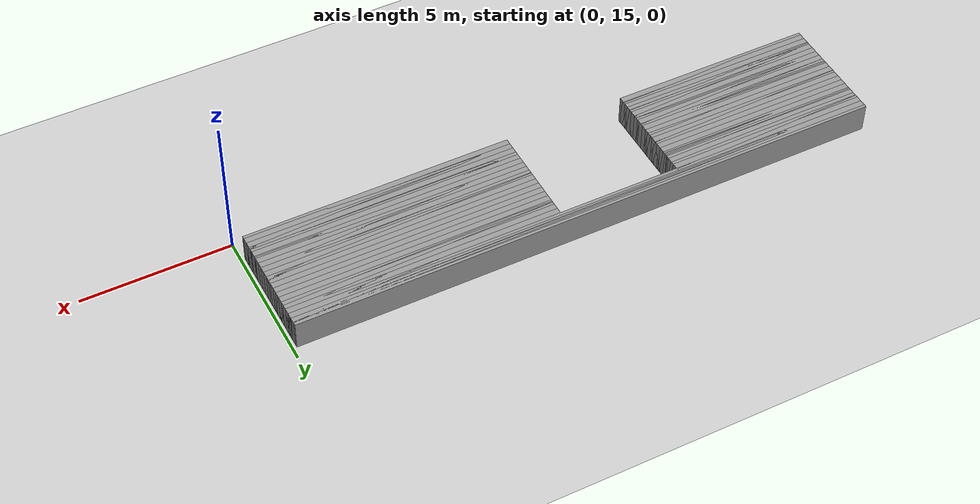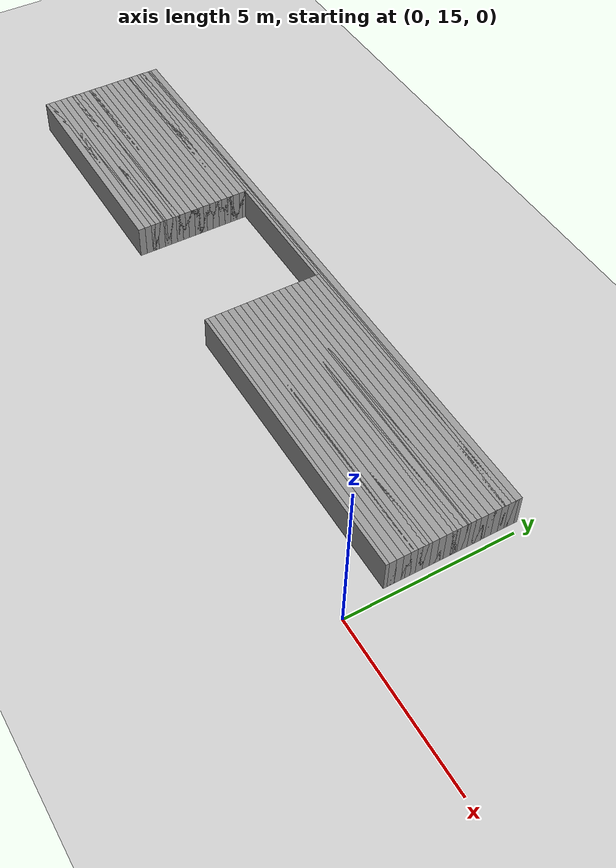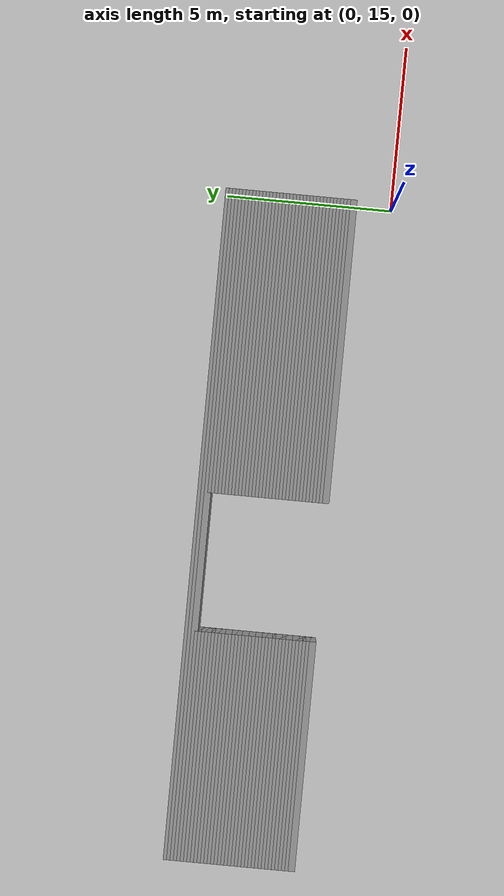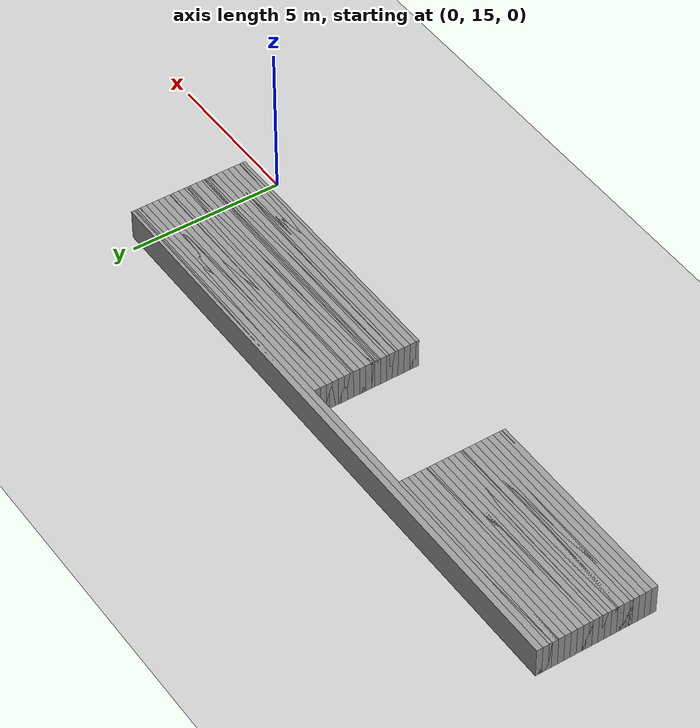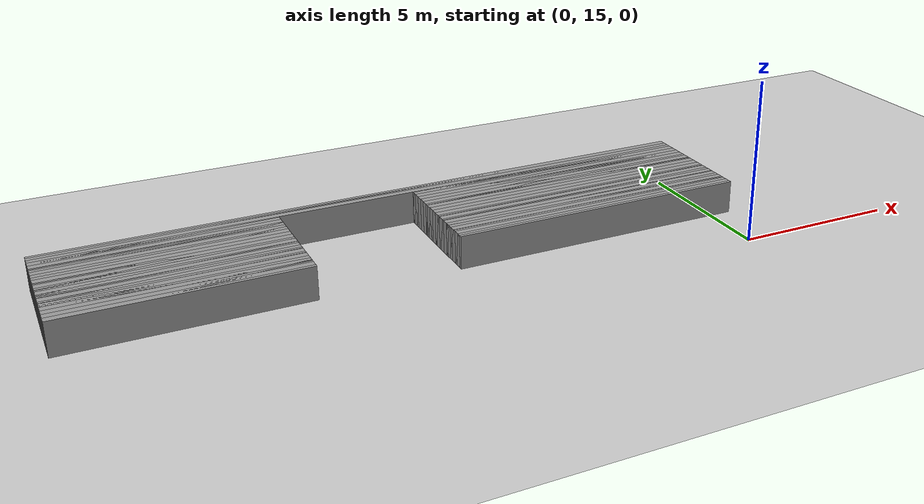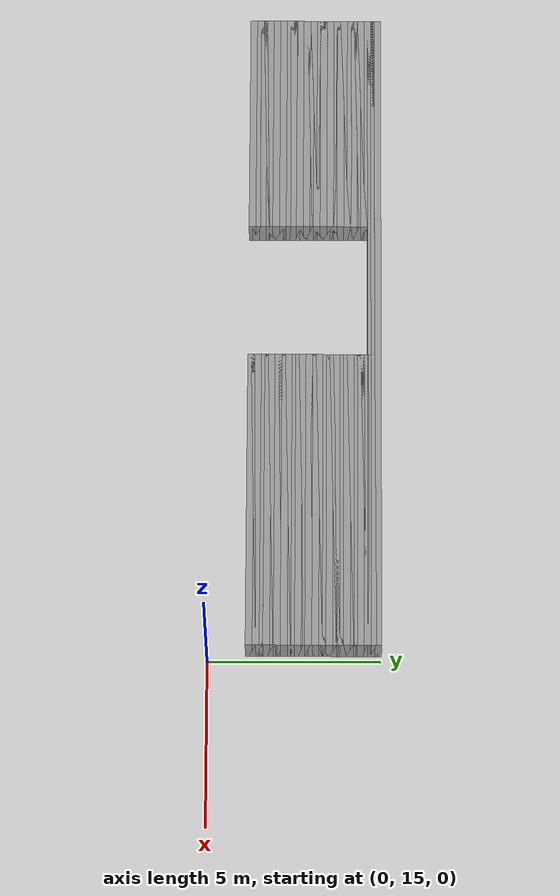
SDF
<sdf version="1.6">
 <world name="GridMap">
  <include><uri>model://sun</uri></include>
  <include><uri>model://ground_plane</uri></include>
  <model name="GridMap">
   <link name="Wall_(45.0,162.0)">
    <collision name="Wall_(45.0,162.0)_Collision">
     <geometry><box><size>9.0 0.2 1.0</size></box></geometry>
     <pose>-4.5 16.2 0.5 0 -0 0</pose>
    </collision>
    <visual name="Wall_(45.0,162.0)_Visual">
     <geometry><box><size>9.0 0.2 1.0</size></box></geometry>
     <pose>-4.5 16.2 0.5 0 -0 0</pose>
     <material>
      <script><uri>file://media/materials/scripts/gazebo.material</uri><name>Gazebo/Grey</name></script>
      <ambient>1 1 1 1</ambient>
     </material>
     <meta><layer>0</layer></meta>
    </visual>
    <pose>0 0 0.5 0 -0 0</pose>
   </link>
   <link name="Wall_(165.0,162.0)">
    <collision name="Wall_(165.0,162.0)_Collision">
     <geometry><box><size>6.800000000000001 0.2 1.0</size></box></geometry>
     <pose>-16.5 16.2 0.5 0 -0 0</pose>
    </collision>
    <visual name="Wall_(165.0,162.0)_Visual">
     <geometry><box><size>6.800000000000001 0.2 1.0</size></box></geometry>
     <pose>-16.5 16.2 0.5 0 -0 0</pose>
     <material>
      <script><uri>file://media/materials/scripts/gazebo.material</uri><name>Gazebo/Grey</name></script>
      <ambient>1 1 1 1</ambient>
     </material>
     <meta><layer>0</layer></meta>
    </visual>
    <pose>0 0 0.5 0 -0 0</pose>
   </link>
   <link name="Wall_(45.0,163.0)">
    <collision name="Wall_(45.0,163.0)_Collision">
     <geometry><box><size>9.0 0.2 1.0</size></box></geometry>
     <pose>-4.5 16.3 0.5 0 -0 0</pose>
    </collision>
    <visual name="Wall_(45.0,163.0)_Visual">
     <geometry><box><size>9.0 0.2 1.0</size></box></geometry>
     <pose>-4.5 16.3 0.5 0 -0 0</pose>
     <material>
      <script><uri>file://media/materials/scripts/gazebo.material</uri><name>Gazebo/Grey</name></script>
      <ambient>1 1 1 1</ambient>
     </material>
     <meta><layer>0</layer></meta>
    </visual>
    <pose>0 0 0.5 0 -0 0</pose>
   </link>
   <link name="Wall_(165.0,163.0)">
    <collision name="Wall_(165.0,163.0)_Collision">
     <geometry><box><size>6.800000000000001 0.2 1.0</size></box></geometry>
     <pose>-16.5 16.3 0.5 0 -0 0</pose>
    </collision>
    <visual name="Wall_(165.0,163.0)_Visual">
     <geometry><box><size>6.800000000000001 0.2 1.0</size></box></geometry>
     <pose>-16.5 16.3 0.5 0 -0 0</pose>
     <material>
      <script><uri>file://media/materials/scripts/gazebo.material</uri><name>Gazebo/Grey</name></script>
      <ambient>1 1 1 1</ambient>
     </material>
     <meta><layer>0</layer></meta>
    </visual>
    <pose>0 0 0.5 0 -0 0</pose>
   </link>
   <link name="Wall_(45.0,164.0)">
    <collision name="Wall_(45.0,164.0)_Collision">
     <geometry><box><size>9.0 0.2 1.0</size></box></geometry>
     <pose>-4.5 16.400000000000002 0.5 0 -0 0</pose>
    </collision>
    <visual name="Wall_(45.0,164.0)_Visual">
     <geometry><box><size>9.0 0.2 1.0</size></box></geometry>
     <pose>-4.5 16.400000000000002 0.5 0 -0 0</pose>
     <material>
      <script><uri>file://media/materials/scripts/gazebo.material</uri><name>Gazebo/Grey</name></script>
      <ambient>1 1 1 1</ambient>
     </material>
     <meta><layer>0</layer></meta>
    </visual>
    <pose>0 0 0.5 0 -0 0</pose>
   </link>
   <link name="Wall_(165.0,164.0)">
    <collision name="Wall_(165.0,164.0)_Collision">
     <geometry><box><size>6.800000000000001 0.2 1.0</size></box></geometry>
     <pose>-16.5 16.400000000000002 0.5 0 -0 0</pose>
    </collision>
    <visual name="Wall_(165.0,164.0)_Visual">
     <geometry><box><size>6.800000000000001 0.2 1.0</size></box></geometry>
     <pose>-16.5 16.400000000000002 0.5 0 -0 0</pose>
     <material>
      <script><uri>file://media/materials/scripts/gazebo.material</uri><name>Gazebo/Grey</name></script>
      <ambient>1 1 1 1</ambient>
     </material>
     <meta><layer>0</layer></meta>
    </visual>
    <pose>0 0 0.5 0 -0 0</pose>
   </link>
   <link name="Wall_(45.0,165.0)">
    <collision name="Wall_(45.0,165.0)_Collision">
     <geometry><box><size>9.0 0.2 1.0</size></box></geometry>
     <pose>-4.5 16.5 0.5 0 -0 0</pose>
    </collision>
    <visual name="Wall_(45.0,165.0)_Visual">
     <geometry><box><size>9.0 0.2 1.0</size></box></geometry>
     <pose>-4.5 16.5 0.5 0 -0 0</pose>
     <material>
      <script><uri>file://media/materials/scripts/gazebo.material</uri><name>Gazebo/Grey</name></script>
      <ambient>1 1 1 1</ambient>
     </material>
     <meta><layer>0</layer></meta>
    </visual>
    <pose>0 0 0.5 0 -0 0</pose>
   </link>
   <link name="Wall_(165.0,165.0)">
    <collision name="Wall_(165.0,165.0)_Collision">
     <geometry><box><size>6.800000000000001 0.2 1.0</size></box></geometry>
     <pose>-16.5 16.5 0.5 0 -0 0</pose>
    </collision>
    <visual name="Wall_(165.0,165.0)_Visual">
     <geometry><box><size>6.800000000000001 0.2 1.0</size></box></geometry>
     <pose>-16.5 16.5 0.5 0 -0 0</pose>
     <material>
      <script><uri>file://media/materials/scripts/gazebo.material</uri><name>Gazebo/Grey</name></script>
      <ambient>1 1 1 1</ambient>
     </material>
     <meta><layer>0</layer></meta>
    </visual>
    <pose>0 0 0.5 0 -0 0</pose>
   </link>
   <link name="Wall_(45.0,166.0)">
    <collision name="Wall_(45.0,166.0)_Collision">
     <geometry><box><size>9.0 0.2 1.0</size></box></geometry>
     <pose>-4.5 16.6 0.5 0 -0 0</pose>
    </collision>
    <visual name="Wall_(45.0,166.0)_Visual">
     <geometry><box><size>9.0 0.2 1.0</size></box></geometry>
     <pose>-4.5 16.6 0.5 0 -0 0</pose>
     <material>
      <script><uri>file://media/materials/scripts/gazebo.material</uri><name>Gazebo/Grey</name></script>
      <ambient>1 1 1 1</ambient>
     </material>
     <meta><layer>0</layer></meta>
    </visual>
    <pose>0 0 0.5 0 -0 0</pose>
   </link>
   <link name="Wall_(165.0,166.0)">
    <collision name="Wall_(165.0,166.0)_Collision">
     <geometry><box><size>6.800000000000001 0.2 1.0</size></box></geometry>
     <pose>-16.5 16.6 0.5 0 -0 0</pose>
    </collision>
    <visual name="Wall_(165.0,166.0)_Visual">
     <geometry><box><size>6.800000000000001 0.2 1.0</size></box></geometry>
     <pose>-16.5 16.6 0.5 0 -0 0</pose>
     <material>
      <script><uri>file://media/materials/scripts/gazebo.material</uri><name>Gazebo/Grey</name></script>
      <ambient>1 1 1 1</ambient>
     </material>
     <meta><layer>0</layer></meta>
    </visual>
    <pose>0 0 0.5 0 -0 0</pose>
   </link>
   <link name="Wall_(45.0,167.0)">
    <collision name="Wall_(45.0,167.0)_Collision">
     <geometry><box><size>9.0 0.2 1.0</size></box></geometry>
     <pose>-4.5 16.7 0.5 0 -0 0</pose>
    </collision>
    <visual name="Wall_(45.0,167.0)_Visual">
     <geometry><box><size>9.0 0.2 1.0</size></box></geometry>
     <pose>-4.5 16.7 0.5 0 -0 0</pose>
     <material>
      <script><uri>file://media/materials/scripts/gazebo.material</uri><name>Gazebo/Grey</name></script>
      <ambient>1 1 1 1</ambient>
     </material>
     <meta><layer>0</layer></meta>
    </visual>
    <pose>0 0 0.5 0 -0 0</pose>
   </link>
   <link name="Wall_(165.0,167.0)">
    <collision name="Wall_(165.0,167.0)_Collision">
     <geometry><box><size>6.800000000000001 0.2 1.0</size></box></geometry>
     <pose>-16.5 16.7 0.5 0 -0 0</pose>
    </collision>
    <visual name="Wall_(165.0,167.0)_Visual">
     <geometry><box><size>6.800000000000001 0.2 1.0</size></box></geometry>
     <pose>-16.5 16.7 0.5 0 -0 0</pose>
     <material>
      <script><uri>file://media/materials/scripts/gazebo.material</uri><name>Gazebo/Grey</name></script>
      <ambient>1 1 1 1</ambient>
     </material>
     <meta><layer>0</layer></meta>
    </visual>
    <pose>0 0 0.5 0 -0 0</pose>
   </link>
   <link name="Wall_(45.0,168.0)">
    <collision name="Wall_(45.0,168.0)_Collision">
     <geometry><box><size>9.0 0.2 1.0</size></box></geometry>
     <pose>-4.5 16.8 0.5 0 -0 0</pose>
    </collision>
    <visual name="Wall_(45.0,168.0)_Visual">
     <geometry><box><size>9.0 0.2 1.0</size></box></geometry>
     <pose>-4.5 16.8 0.5 0 -0 0</pose>
     <material>
      <script><uri>file://media/materials/scripts/gazebo.material</uri><name>Gazebo/Grey</name></script>
      <ambient>1 1 1 1</ambient>
     </material>
     <meta><layer>0</layer></meta>
    </visual>
    <pose>0 0 0.5 0 -0 0</pose>
   </link>
   <link name="Wall_(165.0,168.0)">
    <collision name="Wall_(165.0,168.0)_Collision">
     <geometry><box><size>6.800000000000001 0.2 1.0</size></box></geometry>
     <pose>-16.5 16.8 0.5 0 -0 0</pose>
    </collision>
    <visual name="Wall_(165.0,168.0)_Visual">
     <geometry><box><size>6.800000000000001 0.2 1.0</size></box></geometry>
     <pose>-16.5 16.8 0.5 0 -0 0</pose>
     <material>
      <script><uri>file://media/materials/scripts/gazebo.material</uri><name>Gazebo/Grey</name></script>
      <ambient>1 1 1 1</ambient>
     </material>
     <meta><layer>0</layer></meta>
    </visual>
    <pose>0 0 0.5 0 -0 0</pose>
   </link>
   <link name="Wall_(45.0,169.0)">
    <collision name="Wall_(45.0,169.0)_Collision">
     <geometry><box><size>9.0 0.2 1.0</size></box></geometry>
     <pose>-4.5 16.900000000000002 0.5 0 -0 0</pose>
    </collision>
    <visual name="Wall_(45.0,169.0)_Visual">
     <geometry><box><size>9.0 0.2 1.0</size></box></geometry>
     <pose>-4.5 16.900000000000002 0.5 0 -0 0</pose>
     <material>
      <script><uri>file://media/materials/scripts/gazebo.material</uri><name>Gazebo/Grey</name></script>
      <ambient>1 1 1 1</ambient>
     </material>
     <meta><layer>0</layer></meta>
    </visual>
    <pose>0 0 0.5 0 -0 0</pose>
   </link>
   <link name="Wall_(165.0,169.0)">
    <collision name="Wall_(165.0,169.0)_Collision">
     <geometry><box><size>6.800000000000001 0.2 1.0</size></box></geometry>
     <pose>-16.5 16.900000000000002 0.5 0 -0 0</pose>
    </collision>
    <visual name="Wall_(165.0,169.0)_Visual">
     <geometry><box><size>6.800000000000001 0.2 1.0</size></box></geometry>
     <pose>-16.5 16.900000000000002 0.5 0 -0 0</pose>
     <material>
      <script><uri>file://media/materials/scripts/gazebo.material</uri><name>Gazebo/Grey</name></script>
      <ambient>1 1 1 1</ambient>
     </material>
     <meta><layer>0</layer></meta>
    </visual>
    <pose>0 0 0.5 0 -0 0</pose>
   </link>
   <link name="Wall_(45.0,170.0)">
    <collision name="Wall_(45.0,170.0)_Collision">
     <geometry><box><size>9.0 0.2 1.0</size></box></geometry>
     <pose>-4.5 17.0 0.5 0 -0 0</pose>
    </collision>
    <visual name="Wall_(45.0,170.0)_Visual">
     <geometry><box><size>9.0 0.2 1.0</size></box></geometry>
     <pose>-4.5 17.0 0.5 0 -0 0</pose>
     <material>
      <script><uri>file://media/materials/scripts/gazebo.material</uri><name>Gazebo/Grey</name></script>
      <ambient>1 1 1 1</ambient>
     </material>
     <meta><layer>0</layer></meta>
    </visual>
    <pose>0 0 0.5 0 -0 0</pose>
   </link>
   <link name="Wall_(165.0,170.0)">
    <collision name="Wall_(165.0,170.0)_Collision">
     <geometry><box><size>6.800000000000001 0.2 1.0</size></box></geometry>
     <pose>-16.5 17.0 0.5 0 -0 0</pose>
    </collision>
    <visual name="Wall_(165.0,170.0)_Visual">
     <geometry><box><size>6.800000000000001 0.2 1.0</size></box></geometry>
     <pose>-16.5 17.0 0.5 0 -0 0</pose>
     <material>
      <script><uri>file://media/materials/scripts/gazebo.material</uri><name>Gazebo/Grey</name></script>
      <ambient>1 1 1 1</ambient>
     </material>
     <meta><layer>0</layer></meta>
    </visual>
    <pose>0 0 0.5 0 -0 0</pose>
   </link>
   <link name="Wall_(45.0,171.0)">
    <collision name="Wall_(45.0,171.0)_Collision">
     <geometry><box><size>9.0 0.2 1.0</size></box></geometry>
     <pose>-4.5 17.1 0.5 0 -0 0</pose>
    </collision>
    <visual name="Wall_(45.0,171.0)_Visual">
     <geometry><box><size>9.0 0.2 1.0</size></box></geometry>
     <pose>-4.5 17.1 0.5 0 -0 0</pose>
     <material>
      <script><uri>file://media/materials/scripts/gazebo.material</uri><name>Gazebo/Grey</name></script>
      <ambient>1 1 1 1</ambient>
     </material>
     <meta><layer>0</layer></meta>
    </visual>
    <pose>0 0 0.5 0 -0 0</pose>
   </link>
   <link name="Wall_(165.0,171.0)">
    <collision name="Wall_(165.0,171.0)_Collision">
     <geometry><box><size>6.800000000000001 0.2 1.0</size></box></geometry>
     <pose>-16.5 17.1 0.5 0 -0 0</pose>
    </collision>
    <visual name="Wall_(165.0,171.0)_Visual">
     <geometry><box><size>6.800000000000001 0.2 1.0</size></box></geometry>
     <pose>-16.5 17.1 0.5 0 -0 0</pose>
     <material>
      <script><uri>file://media/materials/scripts/gazebo.material</uri><name>Gazebo/Grey</name></script>
      <ambient>1 1 1 1</ambient>
     </material>
     <meta><layer>0</layer></meta>
    </visual>
    <pose>0 0 0.5 0 -0 0</pose>
   </link>
   <link name="Wall_(45.0,172.0)">
    <collision name="Wall_(45.0,172.0)_Collision">
     <geometry><box><size>9.0 0.2 1.0</size></box></geometry>
     <pose>-4.5 17.2 0.5 0 -0 0</pose>
    </collision>
    <visual name="Wall_(45.0,172.0)_Visual">
     <geometry><box><size>9.0 0.2 1.0</size></box></geometry>
     <pose>-4.5 17.2 0.5 0 -0 0</pose>
     <material>
      <script><uri>file://media/materials/scripts/gazebo.material</uri><name>Gazebo/Grey</name></script>
      <ambient>1 1 1 1</ambient>
     </material>
     <meta><layer>0</layer></meta>
    </visual>
    <pose>0 0 0.5 0 -0 0</pose>
   </link>
   <link name="Wall_(165.0,172.0)">
    <collision name="Wall_(165.0,172.0)_Collision">
     <geometry><box><size>6.800000000000001 0.2 1.0</size></box></geometry>
     <pose>-16.5 17.2 0.5 0 -0 0</pose>
    </collision>
    <visual name="Wall_(165.0,172.0)_Visual">
     <geometry><box><size>6.800000000000001 0.2 1.0</size></box></geometry>
     <pose>-16.5 17.2 0.5 0 -0 0</pose>
     <material>
      <script><uri>file://media/materials/scripts/gazebo.material</uri><name>Gazebo/Grey</name></script>
      <ambient>1 1 1 1</ambient>
     </material>
     <meta><layer>0</layer></meta>
    </visual>
    <pose>0 0 0.5 0 -0 0</pose>
   </link>
   <link name="Wall_(45.0,173.0)">
    <collision name="Wall_(45.0,173.0)_Collision">
     <geometry><box><size>9.0 0.2 1.0</size></box></geometry>
     <pose>-4.5 17.3 0.5 0 -0 0</pose>
    </collision>
    <visual name="Wall_(45.0,173.0)_Visual">
     <geometry><box><size>9.0 0.2 1.0</size></box></geometry>
     <pose>-4.5 17.3 0.5 0 -0 0</pose>
     <material>
      <script><uri>file://media/materials/scripts/gazebo.material</uri><name>Gazebo/Grey</name></script>
      <ambient>1 1 1 1</ambient>
     </material>
     <meta><layer>0</layer></meta>
    </visual>
    <pose>0 0 0.5 0 -0 0</pose>
   </link>
   <link name="Wall_(165.0,173.0)">
    <collision name="Wall_(165.0,173.0)_Collision">
     <geometry><box><size>6.800000000000001 0.2 1.0</size></box></geometry>
     <pose>-16.5 17.3 0.5 0 -0 0</pose>
    </collision>
    <visual name="Wall_(165.0,173.0)_Visual">
     <geometry><box><size>6.800000000000001 0.2 1.0</size></box></geometry>
     <pose>-16.5 17.3 0.5 0 -0 0</pose>
     <material>
      <script><uri>file://media/materials/scripts/gazebo.material</uri><name>Gazebo/Grey</name></script>
      <ambient>1 1 1 1</ambient>
     </material>
     <meta><layer>0</layer></meta>
    </visual>
    <pose>0 0 0.5 0 -0 0</pose>
   </link>
   <link name="Wall_(45.0,174.0)">
    <collision name="Wall_(45.0,174.0)_Collision">
     <geometry><box><size>9.0 0.2 1.0</size></box></geometry>
     <pose>-4.5 17.400000000000002 0.5 0 -0 0</pose>
    </collision>
    <visual name="Wall_(45.0,174.0)_Visual">
     <geometry><box><size>9.0 0.2 1.0</size></box></geometry>
     <pose>-4.5 17.400000000000002 0.5 0 -0 0</pose>
     <material>
      <script><uri>file://media/materials/scripts/gazebo.material</uri><name>Gazebo/Grey</name></script>
      <ambient>1 1 1 1</ambient>
     </material>
     <meta><layer>0</layer></meta>
    </visual>
    <pose>0 0 0.5 0 -0 0</pose>
   </link>
   <link name="Wall_(165.0,174.0)">
    <collision name="Wall_(165.0,174.0)_Collision">
     <geometry><box><size>6.800000000000001 0.2 1.0</size></box></geometry>
     <pose>-16.5 17.400000000000002 0.5 0 -0 0</pose>
    </collision>
    <visual name="Wall_(165.0,174.0)_Visual">
     <geometry><box><size>6.800000000000001 0.2 1.0</size></box></geometry>
     <pose>-16.5 17.400000000000002 0.5 0 -0 0</pose>
     <material>
      <script><uri>file://media/materials/scripts/gazebo.material</uri><name>Gazebo/Grey</name></script>
      <ambient>1 1 1 1</ambient>
     </material>
     <meta><layer>0</layer></meta>
    </visual>
    <pose>0 0 0.5 0 -0 0</pose>
   </link>
   <link name="Wall_(45.0,175.0)">
    <collision name="Wall_(45.0,175.0)_Collision">
     <geometry><box><size>9.0 0.2 1.0</size></box></geometry>
     <pose>-4.5 17.5 0.5 0 -0 0</pose>
    </collision>
    <visual name="Wall_(45.0,175.0)_Visual">
     <geometry><box><size>9.0 0.2 1.0</size></box></geometry>
     <pose>-4.5 17.5 0.5 0 -0 0</pose>
     <material>
      <script><uri>file://media/materials/scripts/gazebo.material</uri><name>Gazebo/Grey</name></script>
      <ambient>1 1 1 1</ambient>
     </material>
     <meta><layer>0</layer></meta>
    </visual>
    <pose>0 0 0.5 0 -0 0</pose>
   </link>
   <link name="Wall_(165.0,175.0)">
    <collision name="Wall_(165.0,175.0)_Collision">
     <geometry><box><size>6.800000000000001 0.2 1.0</size></box></geometry>
     <pose>-16.5 17.5 0.5 0 -0 0</pose>
    </collision>
    <visual name="Wall_(165.0,175.0)_Visual">
     <geometry><box><size>6.800000000000001 0.2 1.0</size></box></geometry>
     <pose>-16.5 17.5 0.5 0 -0 0</pose>
     <material>
      <script><uri>file://media/materials/scripts/gazebo.material</uri><name>Gazebo/Grey</name></script>
      <ambient>1 1 1 1</ambient>
     </material>
     <meta><layer>0</layer></meta>
    </visual>
    <pose>0 0 0.5 0 -0 0</pose>
   </link>
   <link name="Wall_(45.0,176.0)">
    <collision name="Wall_(45.0,176.0)_Collision">
     <geometry><box><size>9.0 0.2 1.0</size></box></geometry>
     <pose>-4.5 17.6 0.5 0 -0 0</pose>
    </collision>
    <visual name="Wall_(45.0,176.0)_Visual">
     <geometry><box><size>9.0 0.2 1.0</size></box></geometry>
     <pose>-4.5 17.6 0.5 0 -0 0</pose>
     <material>
      <script><uri>file://media/materials/scripts/gazebo.material</uri><name>Gazebo/Grey</name></script>
      <ambient>1 1 1 1</ambient>
     </material>
     <meta><layer>0</layer></meta>
    </visual>
    <pose>0 0 0.5 0 -0 0</pose>
   </link>
   <link name="Wall_(165.0,176.0)">
    <collision name="Wall_(165.0,176.0)_Collision">
     <geometry><box><size>6.800000000000001 0.2 1.0</size></box></geometry>
     <pose>-16.5 17.6 0.5 0 -0 0</pose>
    </collision>
    <visual name="Wall_(165.0,176.0)_Visual">
     <geometry><box><size>6.800000000000001 0.2 1.0</size></box></geometry>
     <pose>-16.5 17.6 0.5 0 -0 0</pose>
     <material>
      <script><uri>file://media/materials/scripts/gazebo.material</uri><name>Gazebo/Grey</name></script>
      <ambient>1 1 1 1</ambient>
     </material>
     <meta><layer>0</layer></meta>
    </visual>
    <pose>0 0 0.5 0 -0 0</pose>
   </link>
   <link name="Wall_(45.0,177.0)">
    <collision name="Wall_(45.0,177.0)_Collision">
     <geometry><box><size>9.0 0.2 1.0</size></box></geometry>
     <pose>-4.5 17.7 0.5 0 -0 0</pose>
    </collision>
    <visual name="Wall_(45.0,177.0)_Visual">
     <geometry><box><size>9.0 0.2 1.0</size></box></geometry>
     <pose>-4.5 17.7 0.5 0 -0 0</pose>
     <material>
      <script><uri>file://media/materials/scripts/gazebo.material</uri><name>Gazebo/Grey</name></script>
      <ambient>1 1 1 1</ambient>
     </material>
     <meta><layer>0</layer></meta>
    </visual>
    <pose>0 0 0.5 0 -0 0</pose>
   </link>
   <link name="Wall_(165.0,177.0)">
    <collision name="Wall_(165.0,177.0)_Collision">
     <geometry><box><size>6.800000000000001 0.2 1.0</size></box></geometry>
     <pose>-16.5 17.7 0.5 0 -0 0</pose>
    </collision>
    <visual name="Wall_(165.0,177.0)_Visual">
     <geometry><box><size>6.800000000000001 0.2 1.0</size></box></geometry>
     <pose>-16.5 17.7 0.5 0 -0 0</pose>
     <material>
      <script><uri>file://media/materials/scripts/gazebo.material</uri><name>Gazebo/Grey</name></script>
      <ambient>1 1 1 1</ambient>
     </material>
     <meta><layer>0</layer></meta>
    </visual>
    <pose>0 0 0.5 0 -0 0</pose>
   </link>
   <link name="Wall_(45.0,178.0)">
    <collision name="Wall_(45.0,178.0)_Collision">
     <geometry><box><size>9.0 0.2 1.0</size></box></geometry>
     <pose>-4.5 17.8 0.5 0 -0 0</pose>
    </collision>
    <visual name="Wall_(45.0,178.0)_Visual">
     <geometry><box><size>9.0 0.2 1.0</size></box></geometry>
     <pose>-4.5 17.8 0.5 0 -0 0</pose>
     <material>
      <script><uri>file://media/materials/scripts/gazebo.material</uri><name>Gazebo/Grey</name></script>
      <ambient>1 1 1 1</ambient>
     </material>
     <meta><layer>0</layer></meta>
    </visual>
    <pose>0 0 0.5 0 -0 0</pose>
   </link>
   <link name="Wall_(165.0,178.0)">
    <collision name="Wall_(165.0,178.0)_Collision">
     <geometry><box><size>6.800000000000001 0.2 1.0</size></box></geometry>
     <pose>-16.5 17.8 0.5 0 -0 0</pose>
    </collision>
    <visual name="Wall_(165.0,178.0)_Visual">
     <geometry><box><size>6.800000000000001 0.2 1.0</size></box></geometry>
     <pose>-16.5 17.8 0.5 0 -0 0</pose>
     <material>
      <script><uri>file://media/materials/scripts/gazebo.material</uri><name>Gazebo/Grey</name></script>
      <ambient>1 1 1 1</ambient>
     </material>
     <meta><layer>0</layer></meta>
    </visual>
    <pose>0 0 0.5 0 -0 0</pose>
   </link>
   <link name="Wall_(45.0,179.0)">
    <collision name="Wall_(45.0,179.0)_Collision">
     <geometry><box><size>9.0 0.2 1.0</size></box></geometry>
     <pose>-4.5 17.900000000000002 0.5 0 -0 0</pose>
    </collision>
    <visual name="Wall_(45.0,179.0)_Visual">
     <geometry><box><size>9.0 0.2 1.0</size></box></geometry>
     <pose>-4.5 17.900000000000002 0.5 0 -0 0</pose>
     <material>
      <script><uri>file://media/materials/scripts/gazebo.material</uri><name>Gazebo/Grey</name></script>
      <ambient>1 1 1 1</ambient>
     </material>
     <meta><layer>0</layer></meta>
    </visual>
    <pose>0 0 0.5 0 -0 0</pose>
   </link>
   <link name="Wall_(165.0,179.0)">
    <collision name="Wall_(165.0,179.0)_Collision">
     <geometry><box><size>6.800000000000001 0.2 1.0</size></box></geometry>
     <pose>-16.5 17.900000000000002 0.5 0 -0 0</pose>
    </collision>
    <visual name="Wall_(165.0,179.0)_Visual">
     <geometry><box><size>6.800000000000001 0.2 1.0</size></box></geometry>
     <pose>-16.5 17.900000000000002 0.5 0 -0 0</pose>
     <material>
      <script><uri>file://media/materials/scripts/gazebo.material</uri><name>Gazebo/Grey</name></script>
      <ambient>1 1 1 1</ambient>
     </material>
     <meta><layer>0</layer></meta>
    </visual>
    <pose>0 0 0.5 0 -0 0</pose>
   </link>
   <link name="Wall_(45.0,180.0)">
    <collision name="Wall_(45.0,180.0)_Collision">
     <geometry><box><size>9.0 0.2 1.0</size></box></geometry>
     <pose>-4.5 18.0 0.5 0 -0 0</pose>
    </collision>
    <visual name="Wall_(45.0,180.0)_Visual">
     <geometry><box><size>9.0 0.2 1.0</size></box></geometry>
     <pose>-4.5 18.0 0.5 0 -0 0</pose>
     <material>
      <script><uri>file://media/materials/scripts/gazebo.material</uri><name>Gazebo/Grey</name></script>
      <ambient>1 1 1 1</ambient>
     </material>
     <meta><layer>0</layer></meta>
    </visual>
    <pose>0 0 0.5 0 -0 0</pose>
   </link>
   <link name="Wall_(165.0,180.0)">
    <collision name="Wall_(165.0,180.0)_Collision">
     <geometry><box><size>6.800000000000001 0.2 1.0</size></box></geometry>
     <pose>-16.5 18.0 0.5 0 -0 0</pose>
    </collision>
    <visual name="Wall_(165.0,180.0)_Visual">
     <geometry><box><size>6.800000000000001 0.2 1.0</size></box></geometry>
     <pose>-16.5 18.0 0.5 0 -0 0</pose>
     <material>
      <script><uri>file://media/materials/scripts/gazebo.material</uri><name>Gazebo/Grey</name></script>
      <ambient>1 1 1 1</ambient>
     </material>
     <meta><layer>0</layer></meta>
    </visual>
    <pose>0 0 0.5 0 -0 0</pose>
   </link>
   <link name="Wall_(45.0,181.0)">
    <collision name="Wall_(45.0,181.0)_Collision">
     <geometry><box><size>9.0 0.2 1.0</size></box></geometry>
     <pose>-4.5 18.1 0.5 0 -0 0</pose>
    </collision>
    <visual name="Wall_(45.0,181.0)_Visual">
     <geometry><box><size>9.0 0.2 1.0</size></box></geometry>
     <pose>-4.5 18.1 0.5 0 -0 0</pose>
     <material>
      <script><uri>file://media/materials/scripts/gazebo.material</uri><name>Gazebo/Grey</name></script>
      <ambient>1 1 1 1</ambient>
     </material>
     <meta><layer>0</layer></meta>
    </visual>
    <pose>0 0 0.5 0 -0 0</pose>
   </link>
   <link name="Wall_(165.0,181.0)">
    <collision name="Wall_(165.0,181.0)_Collision">
     <geometry><box><size>6.800000000000001 0.2 1.0</size></box></geometry>
     <pose>-16.5 18.1 0.5 0 -0 0</pose>
    </collision>
    <visual name="Wall_(165.0,181.0)_Visual">
     <geometry><box><size>6.800000000000001 0.2 1.0</size></box></geometry>
     <pose>-16.5 18.1 0.5 0 -0 0</pose>
     <material>
      <script><uri>file://media/materials/scripts/gazebo.material</uri><name>Gazebo/Grey</name></script>
      <ambient>1 1 1 1</ambient>
     </material>
     <meta><layer>0</layer></meta>
    </visual>
    <pose>0 0 0.5 0 -0 0</pose>
   </link>
   <link name="Wall_(45.0,182.0)">
    <collision name="Wall_(45.0,182.0)_Collision">
     <geometry><box><size>9.0 0.2 1.0</size></box></geometry>
     <pose>-4.5 18.2 0.5 0 -0 0</pose>
    </collision>
    <visual name="Wall_(45.0,182.0)_Visual">
     <geometry><box><size>9.0 0.2 1.0</size></box></geometry>
     <pose>-4.5 18.2 0.5 0 -0 0</pose>
     <material>
      <script><uri>file://media/materials/scripts/gazebo.material</uri><name>Gazebo/Grey</name></script>
      <ambient>1 1 1 1</ambient>
     </material>
     <meta><layer>0</layer></meta>
    </visual>
    <pose>0 0 0.5 0 -0 0</pose>
   </link>
   <link name="Wall_(165.0,182.0)">
    <collision name="Wall_(165.0,182.0)_Collision">
     <geometry><box><size>6.800000000000001 0.2 1.0</size></box></geometry>
     <pose>-16.5 18.2 0.5 0 -0 0</pose>
    </collision>
    <visual name="Wall_(165.0,182.0)_Visual">
     <geometry><box><size>6.800000000000001 0.2 1.0</size></box></geometry>
     <pose>-16.5 18.2 0.5 0 -0 0</pose>
     <material>
      <script><uri>file://media/materials/scripts/gazebo.material</uri><name>Gazebo/Grey</name></script>
      <ambient>1 1 1 1</ambient>
     </material>
     <meta><layer>0</layer></meta>
    </visual>
    <pose>0 0 0.5 0 -0 0</pose>
   </link>
   <link name="Wall_(45.0,183.0)">
    <collision name="Wall_(45.0,183.0)_Collision">
     <geometry><box><size>9.0 0.2 1.0</size></box></geometry>
     <pose>-4.5 18.3 0.5 0 -0 0</pose>
    </collision>
    <visual name="Wall_(45.0,183.0)_Visual">
     <geometry><box><size>9.0 0.2 1.0</size></box></geometry>
     <pose>-4.5 18.3 0.5 0 -0 0</pose>
     <material>
      <script><uri>file://media/materials/scripts/gazebo.material</uri><name>Gazebo/Grey</name></script>
      <ambient>1 1 1 1</ambient>
     </material>
     <meta><layer>0</layer></meta>
    </visual>
    <pose>0 0 0.5 0 -0 0</pose>
   </link>
   <link name="Wall_(165.0,183.0)">
    <collision name="Wall_(165.0,183.0)_Collision">
     <geometry><box><size>6.800000000000001 0.2 1.0</size></box></geometry>
     <pose>-16.5 18.3 0.5 0 -0 0</pose>
    </collision>
    <visual name="Wall_(165.0,183.0)_Visual">
     <geometry><box><size>6.800000000000001 0.2 1.0</size></box></geometry>
     <pose>-16.5 18.3 0.5 0 -0 0</pose>
     <material>
      <script><uri>file://media/materials/scripts/gazebo.material</uri><name>Gazebo/Grey</name></script>
      <ambient>1 1 1 1</ambient>
     </material>
     <meta><layer>0</layer></meta>
    </visual>
    <pose>0 0 0.5 0 -0 0</pose>
   </link>
   <link name="Wall_(45.0,184.0)">
    <collision name="Wall_(45.0,184.0)_Collision">
     <geometry><box><size>9.0 0.2 1.0</size></box></geometry>
     <pose>-4.5 18.400000000000002 0.5 0 -0 0</pose>
    </collision>
    <visual name="Wall_(45.0,184.0)_Visual">
     <geometry><box><size>9.0 0.2 1.0</size></box></geometry>
     <pose>-4.5 18.400000000000002 0.5 0 -0 0</pose>
     <material>
      <script><uri>file://media/materials/scripts/gazebo.material</uri><name>Gazebo/Grey</name></script>
      <ambient>1 1 1 1</ambient>
     </material>
     <meta><layer>0</layer></meta>
    </visual>
    <pose>0 0 0.5 0 -0 0</pose>
   </link>
   <link name="Wall_(165.0,184.0)">
    <collision name="Wall_(165.0,184.0)_Collision">
     <geometry><box><size>6.800000000000001 0.2 1.0</size></box></geometry>
     <pose>-16.5 18.400000000000002 0.5 0 -0 0</pose>
    </collision>
    <visual name="Wall_(165.0,184.0)_Visual">
     <geometry><box><size>6.800000000000001 0.2 1.0</size></box></geometry>
     <pose>-16.5 18.400000000000002 0.5 0 -0 0</pose>
     <material>
      <script><uri>file://media/materials/scripts/gazebo.material</uri><name>Gazebo/Grey</name></script>
      <ambient>1 1 1 1</ambient>
     </material>
     <meta><layer>0</layer></meta>
    </visual>
    <pose>0 0 0.5 0 -0 0</pose>
   </link>
   <link name="Wall_(45.0,185.0)">
    <collision name="Wall_(45.0,185.0)_Collision">
     <geometry><box><size>9.0 0.2 1.0</size></box></geometry>
     <pose>-4.5 18.5 0.5 0 -0 0</pose>
    </collision>
    <visual name="Wall_(45.0,185.0)_Visual">
     <geometry><box><size>9.0 0.2 1.0</size></box></geometry>
     <pose>-4.5 18.5 0.5 0 -0 0</pose>
     <material>
      <script><uri>file://media/materials/scripts/gazebo.material</uri><name>Gazebo/Grey</name></script>
      <ambient>1 1 1 1</ambient>
     </material>
     <meta><layer>0</layer></meta>
    </visual>
    <pose>0 0 0.5 0 -0 0</pose>
   </link>
   <link name="Wall_(165.0,185.0)">
    <collision name="Wall_(165.0,185.0)_Collision">
     <geometry><box><size>6.800000000000001 0.2 1.0</size></box></geometry>
     <pose>-16.5 18.5 0.5 0 -0 0</pose>
    </collision>
    <visual name="Wall_(165.0,185.0)_Visual">
     <geometry><box><size>6.800000000000001 0.2 1.0</size></box></geometry>
     <pose>-16.5 18.5 0.5 0 -0 0</pose>
     <material>
      <script><uri>file://media/materials/scripts/gazebo.material</uri><name>Gazebo/Grey</name></script>
      <ambient>1 1 1 1</ambient>
     </material>
     <meta><layer>0</layer></meta>
    </visual>
    <pose>0 0 0.5 0 -0 0</pose>
   </link>
   <link name="Wall_(45.0,186.0)">
    <collision name="Wall_(45.0,186.0)_Collision">
     <geometry><box><size>9.0 0.2 1.0</size></box></geometry>
     <pose>-4.5 18.6 0.5 0 -0 0</pose>
    </collision>
    <visual name="Wall_(45.0,186.0)_Visual">
     <geometry><box><size>9.0 0.2 1.0</size></box></geometry>
     <pose>-4.5 18.6 0.5 0 -0 0</pose>
     <material>
      <script><uri>file://media/materials/scripts/gazebo.material</uri><name>Gazebo/Grey</name></script>
      <ambient>1 1 1 1</ambient>
     </material>
     <meta><layer>0</layer></meta>
    </visual>
    <pose>0 0 0.5 0 -0 0</pose>
   </link>
   <link name="Wall_(165.0,186.0)">
    <collision name="Wall_(165.0,186.0)_Collision">
     <geometry><box><size>6.800000000000001 0.2 1.0</size></box></geometry>
     <pose>-16.5 18.6 0.5 0 -0 0</pose>
    </collision>
    <visual name="Wall_(165.0,186.0)_Visual">
     <geometry><box><size>6.800000000000001 0.2 1.0</size></box></geometry>
     <pose>-16.5 18.6 0.5 0 -0 0</pose>
     <material>
      <script><uri>file://media/materials/scripts/gazebo.material</uri><name>Gazebo/Grey</name></script>
      <ambient>1 1 1 1</ambient>
     </material>
     <meta><layer>0</layer></meta>
    </visual>
    <pose>0 0 0.5 0 -0 0</pose>
   </link>
   <link name="Wall_(45.0,187.0)">
    <collision name="Wall_(45.0,187.0)_Collision">
     <geometry><box><size>9.0 0.2 1.0</size></box></geometry>
     <pose>-4.5 18.7 0.5 0 -0 0</pose>
    </collision>
    <visual name="Wall_(45.0,187.0)_Visual">
     <geometry><box><size>9.0 0.2 1.0</size></box></geometry>
     <pose>-4.5 18.7 0.5 0 -0 0</pose>
     <material>
      <script><uri>file://media/materials/scripts/gazebo.material</uri><name>Gazebo/Grey</name></script>
      <ambient>1 1 1 1</ambient>
     </material>
     <meta><layer>0</layer></meta>
    </visual>
    <pose>0 0 0.5 0 -0 0</pose>
   </link>
   <link name="Wall_(165.0,187.0)">
    <collision name="Wall_(165.0,187.0)_Collision">
     <geometry><box><size>6.800000000000001 0.2 1.0</size></box></geometry>
     <pose>-16.5 18.7 0.5 0 -0 0</pose>
    </collision>
    <visual name="Wall_(165.0,187.0)_Visual">
     <geometry><box><size>6.800000000000001 0.2 1.0</size></box></geometry>
     <pose>-16.5 18.7 0.5 0 -0 0</pose>
     <material>
      <script><uri>file://media/materials/scripts/gazebo.material</uri><name>Gazebo/Grey</name></script>
      <ambient>1 1 1 1</ambient>
     </material>
     <meta><layer>0</layer></meta>
    </visual>
    <pose>0 0 0.5 0 -0 0</pose>
   </link>
   <link name="Wall_(45.0,188.0)">
    <collision name="Wall_(45.0,188.0)_Collision">
     <geometry><box><size>9.0 0.2 1.0</size></box></geometry>
     <pose>-4.5 18.8 0.5 0 -0 0</pose>
    </collision>
    <visual name="Wall_(45.0,188.0)_Visual">
     <geometry><box><size>9.0 0.2 1.0</size></box></geometry>
     <pose>-4.5 18.8 0.5 0 -0 0</pose>
     <material>
      <script><uri>file://media/materials/scripts/gazebo.material</uri><name>Gazebo/Grey</name></script>
      <ambient>1 1 1 1</ambient>
     </material>
     <meta><layer>0</layer></meta>
    </visual>
    <pose>0 0 0.5 0 -0 0</pose>
   </link>
   <link name="Wall_(165.0,188.0)">
    <collision name="Wall_(165.0,188.0)_Collision">
     <geometry><box><size>6.800000000000001 0.2 1.0</size></box></geometry>
     <pose>-16.5 18.8 0.5 0 -0 0</pose>
    </collision>
    <visual name="Wall_(165.0,188.0)_Visual">
     <geometry><box><size>6.800000000000001 0.2 1.0</size></box></geometry>
     <pose>-16.5 18.8 0.5 0 -0 0</pose>
     <material>
      <script><uri>file://media/materials/scripts/gazebo.material</uri><name>Gazebo/Grey</name></script>
      <ambient>1 1 1 1</ambient>
     </material>
     <meta><layer>0</layer></meta>
    </visual>
    <pose>0 0 0.5 0 -0 0</pose>
   </link>
   <link name="Wall_(45.0,189.0)">
    <collision name="Wall_(45.0,189.0)_Collision">
     <geometry><box><size>9.0 0.2 1.0</size></box></geometry>
     <pose>-4.5 18.900000000000002 0.5 0 -0 0</pose>
    </collision>
    <visual name="Wall_(45.0,189.0)_Visual">
     <geometry><box><size>9.0 0.2 1.0</size></box></geometry>
     <pose>-4.5 18.900000000000002 0.5 0 -0 0</pose>
     <material>
      <script><uri>file://media/materials/scripts/gazebo.material</uri><name>Gazebo/Grey</name></script>
      <ambient>1 1 1 1</ambient>
     </material>
     <meta><layer>0</layer></meta>
    </visual>
    <pose>0 0 0.5 0 -0 0</pose>
   </link>
   <link name="Wall_(165.0,189.0)">
    <collision name="Wall_(165.0,189.0)_Collision">
     <geometry><box><size>6.800000000000001 0.2 1.0</size></box></geometry>
     <pose>-16.5 18.900000000000002 0.5 0 -0 0</pose>
    </collision>
    <visual name="Wall_(165.0,189.0)_Visual">
     <geometry><box><size>6.800000000000001 0.2 1.0</size></box></geometry>
     <pose>-16.5 18.900000000000002 0.5 0 -0 0</pose>
     <material>
      <script><uri>file://media/materials/scripts/gazebo.material</uri><name>Gazebo/Grey</name></script>
      <ambient>1 1 1 1</ambient>
     </material>
     <meta><layer>0</layer></meta>
    </visual>
    <pose>0 0 0.5 0 -0 0</pose>
   </link>
   <link name="Wall_(45.0,190.0)">
    <collision name="Wall_(45.0,190.0)_Collision">
     <geometry><box><size>9.0 0.2 1.0</size></box></geometry>
     <pose>-4.5 19.0 0.5 0 -0 0</pose>
    </collision>
    <visual name="Wall_(45.0,190.0)_Visual">
     <geometry><box><size>9.0 0.2 1.0</size></box></geometry>
     <pose>-4.5 19.0 0.5 0 -0 0</pose>
     <material>
      <script><uri>file://media/materials/scripts/gazebo.material</uri><name>Gazebo/Grey</name></script>
      <ambient>1 1 1 1</ambient>
     </material>
     <meta><layer>0</layer></meta>
    </visual>
    <pose>0 0 0.5 0 -0 0</pose>
   </link>
   <link name="Wall_(165.0,190.0)">
    <collision name="Wall_(165.0,190.0)_Collision">
     <geometry><box><size>6.800000000000001 0.2 1.0</size></box></geometry>
     <pose>-16.5 19.0 0.5 0 -0 0</pose>
    </collision>
    <visual name="Wall_(165.0,190.0)_Visual">
     <geometry><box><size>6.800000000000001 0.2 1.0</size></box></geometry>
     <pose>-16.5 19.0 0.5 0 -0 0</pose>
     <material>
      <script><uri>file://media/materials/scripts/gazebo.material</uri><name>Gazebo/Grey</name></script>
      <ambient>1 1 1 1</ambient>
     </material>
     <meta><layer>0</layer></meta>
    </visual>
    <pose>0 0 0.5 0 -0 0</pose>
   </link>
   <link name="Wall_(45.0,191.0)">
    <collision name="Wall_(45.0,191.0)_Collision">
     <geometry><box><size>9.0 0.2 1.0</size></box></geometry>
     <pose>-4.5 19.1 0.5 0 -0 0</pose>
    </collision>
    <visual name="Wall_(45.0,191.0)_Visual">
     <geometry><box><size>9.0 0.2 1.0</size></box></geometry>
     <pose>-4.5 19.1 0.5 0 -0 0</pose>
     <material>
      <script><uri>file://media/materials/scripts/gazebo.material</uri><name>Gazebo/Grey</name></script>
      <ambient>1 1 1 1</ambient>
     </material>
     <meta><layer>0</layer></meta>
    </visual>
    <pose>0 0 0.5 0 -0 0</pose>
   </link>
   <link name="Wall_(165.0,191.0)">
    <collision name="Wall_(165.0,191.0)_Collision">
     <geometry><box><size>6.800000000000001 0.2 1.0</size></box></geometry>
     <pose>-16.5 19.1 0.5 0 -0 0</pose>
    </collision>
    <visual name="Wall_(165.0,191.0)_Visual">
     <geometry><box><size>6.800000000000001 0.2 1.0</size></box></geometry>
     <pose>-16.5 19.1 0.5 0 -0 0</pose>
     <material>
      <script><uri>file://media/materials/scripts/gazebo.material</uri><name>Gazebo/Grey</name></script>
      <ambient>1 1 1 1</ambient>
     </material>
     <meta><layer>0</layer></meta>
    </visual>
    <pose>0 0 0.5 0 -0 0</pose>
   </link>
   <link name="Wall_(45.0,192.0)">
    <collision name="Wall_(45.0,192.0)_Collision">
     <geometry><box><size>9.0 0.2 1.0</size></box></geometry>
     <pose>-4.5 19.200000000000003 0.5 0 -0 0</pose>
    </collision>
    <visual name="Wall_(45.0,192.0)_Visual">
     <geometry><box><size>9.0 0.2 1.0</size></box></geometry>
     <pose>-4.5 19.200000000000003 0.5 0 -0 0</pose>
     <material>
      <script><uri>file://media/materials/scripts/gazebo.material</uri><name>Gazebo/Grey</name></script>
      <ambient>1 1 1 1</ambient>
     </material>
     <meta><layer>0</layer></meta>
    </visual>
    <pose>0 0 0.5 0 -0 0</pose>
   </link>
   <link name="Wall_(165.0,192.0)">
    <collision name="Wall_(165.0,192.0)_Collision">
     <geometry><box><size>6.800000000000001 0.2 1.0</size></box></geometry>
     <pose>-16.5 19.200000000000003 0.5 0 -0 0</pose>
    </collision>
    <visual name="Wall_(165.0,192.0)_Visual">
     <geometry><box><size>6.800000000000001 0.2 1.0</size></box></geometry>
     <pose>-16.5 19.200000000000003 0.5 0 -0 0</pose>
     <material>
      <script><uri>file://media/materials/scripts/gazebo.material</uri><name>Gazebo/Grey</name></script>
      <ambient>1 1 1 1</ambient>
     </material>
     <meta><layer>0</layer></meta>
    </visual>
    <pose>0 0 0.5 0 -0 0</pose>
   </link>
   <link name="Wall_(45.0,193.0)">
    <collision name="Wall_(45.0,193.0)_Collision">
     <geometry><box><size>9.0 0.2 1.0</size></box></geometry>
     <pose>-4.5 19.3 0.5 0 -0 0</pose>
    </collision>
    <visual name="Wall_(45.0,193.0)_Visual">
     <geometry><box><size>9.0 0.2 1.0</size></box></geometry>
     <pose>-4.5 19.3 0.5 0 -0 0</pose>
     <material>
      <script><uri>file://media/materials/scripts/gazebo.material</uri><name>Gazebo/Grey</name></script>
      <ambient>1 1 1 1</ambient>
     </material>
     <meta><layer>0</layer></meta>
    </visual>
    <pose>0 0 0.5 0 -0 0</pose>
   </link>
   <link name="Wall_(165.0,193.0)">
    <collision name="Wall_(165.0,193.0)_Collision">
     <geometry><box><size>6.800000000000001 0.2 1.0</size></box></geometry>
     <pose>-16.5 19.3 0.5 0 -0 0</pose>
    </collision>
    <visual name="Wall_(165.0,193.0)_Visual">
     <geometry><box><size>6.800000000000001 0.2 1.0</size></box></geometry>
     <pose>-16.5 19.3 0.5 0 -0 0</pose>
     <material>
      <script><uri>file://media/materials/scripts/gazebo.material</uri><name>Gazebo/Grey</name></script>
      <ambient>1 1 1 1</ambient>
     </material>
     <meta><layer>0</layer></meta>
    </visual>
    <pose>0 0 0.5 0 -0 0</pose>
   </link>
   <link name="Wall_(45.0,194.0)">
    <collision name="Wall_(45.0,194.0)_Collision">
     <geometry><box><size>9.0 0.2 1.0</size></box></geometry>
     <pose>-4.5 19.400000000000002 0.5 0 -0 0</pose>
    </collision>
    <visual name="Wall_(45.0,194.0)_Visual">
     <geometry><box><size>9.0 0.2 1.0</size></box></geometry>
     <pose>-4.5 19.400000000000002 0.5 0 -0 0</pose>
     <material>
      <script><uri>file://media/materials/scripts/gazebo.material</uri><name>Gazebo/Grey</name></script>
      <ambient>1 1 1 1</ambient>
     </material>
     <meta><layer>0</layer></meta>
    </visual>
    <pose>0 0 0.5 0 -0 0</pose>
   </link>
   <link name="Wall_(165.0,194.0)">
    <collision name="Wall_(165.0,194.0)_Collision">
     <geometry><box><size>6.800000000000001 0.2 1.0</size></box></geometry>
     <pose>-16.5 19.400000000000002 0.5 0 -0 0</pose>
    </collision>
    <visual name="Wall_(165.0,194.0)_Visual">
     <geometry><box><size>6.800000000000001 0.2 1.0</size></box></geometry>
     <pose>-16.5 19.400000000000002 0.5 0 -0 0</pose>
     <material>
      <script><uri>file://media/materials/scripts/gazebo.material</uri><name>Gazebo/Grey</name></script>
      <ambient>1 1 1 1</ambient>
     </material>
     <meta><layer>0</layer></meta>
    </visual>
    <pose>0 0 0.5 0 -0 0</pose>
   </link>
   <link name="Wall_(45.0,195.0)">
    <collision name="Wall_(45.0,195.0)_Collision">
     <geometry><box><size>9.0 0.2 1.0</size></box></geometry>
     <pose>-4.5 19.5 0.5 0 -0 0</pose>
    </collision>
    <visual name="Wall_(45.0,195.0)_Visual">
     <geometry><box><size>9.0 0.2 1.0</size></box></geometry>
     <pose>-4.5 19.5 0.5 0 -0 0</pose>
     <material>
      <script><uri>file://media/materials/scripts/gazebo.material</uri><name>Gazebo/Grey</name></script>
      <ambient>1 1 1 1</ambient>
     </material>
     <meta><layer>0</layer></meta>
    </visual>
    <pose>0 0 0.5 0 -0 0</pose>
   </link>
   <link name="Wall_(165.0,195.0)">
    <collision name="Wall_(165.0,195.0)_Collision">
     <geometry><box><size>6.800000000000001 0.2 1.0</size></box></geometry>
     <pose>-16.5 19.5 0.5 0 -0 0</pose>
    </collision>
    <visual name="Wall_(165.0,195.0)_Visual">
     <geometry><box><size>6.800000000000001 0.2 1.0</size></box></geometry>
     <pose>-16.5 19.5 0.5 0 -0 0</pose>
     <material>
      <script><uri>file://media/materials/scripts/gazebo.material</uri><name>Gazebo/Grey</name></script>
      <ambient>1 1 1 1</ambient>
     </material>
     <meta><layer>0</layer></meta>
    </visual>
    <pose>0 0 0.5 0 -0 0</pose>
   </link>
   <link name="Wall_(45.0,196.0)">
    <collision name="Wall_(45.0,196.0)_Collision">
     <geometry><box><size>9.0 0.2 1.0</size></box></geometry>
     <pose>-4.5 19.6 0.5 0 -0 0</pose>
    </collision>
    <visual name="Wall_(45.0,196.0)_Visual">
     <geometry><box><size>9.0 0.2 1.0</size></box></geometry>
     <pose>-4.5 19.6 0.5 0 -0 0</pose>
     <material>
      <script><uri>file://media/materials/scripts/gazebo.material</uri><name>Gazebo/Grey</name></script>
      <ambient>1 1 1 1</ambient>
     </material>
     <meta><layer>0</layer></meta>
    </visual>
    <pose>0 0 0.5 0 -0 0</pose>
   </link>
   <link name="Wall_(165.0,196.0)">
    <collision name="Wall_(165.0,196.0)_Collision">
     <geometry><box><size>6.800000000000001 0.2 1.0</size></box></geometry>
     <pose>-16.5 19.6 0.5 0 -0 0</pose>
    </collision>
    <visual name="Wall_(165.0,196.0)_Visual">
     <geometry><box><size>6.800000000000001 0.2 1.0</size></box></geometry>
     <pose>-16.5 19.6 0.5 0 -0 0</pose>
     <material>
      <script><uri>file://media/materials/scripts/gazebo.material</uri><name>Gazebo/Grey</name></script>
      <ambient>1 1 1 1</ambient>
     </material>
     <meta><layer>0</layer></meta>
    </visual>
    <pose>0 0 0.5 0 -0 0</pose>
   </link>
   <link name="Wall_(99.5,197.0)">
    <collision name="Wall_(99.5,197.0)_Collision">
     <geometry><box><size>19.900000000000002 0.2 1.0</size></box></geometry>
     <pose>-9.950000000000001 19.700000000000003 0.5 0 -0 0</pose>
    </collision>
    <visual name="Wall_(99.5,197.0)_Visual">
     <geometry><box><size>19.900000000000002 0.2 1.0</size></box></geometry>
     <pose>-9.950000000000001 19.700000000000003 0.5 0 -0 0</pose>
     <material>
      <script><uri>file://media/materials/scripts/gazebo.material</uri><name>Gazebo/Grey</name></script>
      <ambient>1 1 1 1</ambient>
     </material>
     <meta><layer>0</layer></meta>
    </visual>
    <pose>0 0 0.5 0 -0 0</pose>
   </link>
   <link name="Wall_(99.5,198.0)">
    <collision name="Wall_(99.5,198.0)_Collision">
     <geometry><box><size>19.900000000000002 0.2 1.0</size></box></geometry>
     <pose>-9.950000000000001 19.8 0.5 0 -0 0</pose>
    </collision>
    <visual name="Wall_(99.5,198.0)_Visual">
     <geometry><box><size>19.900000000000002 0.2 1.0</size></box></geometry>
     <pose>-9.950000000000001 19.8 0.5 0 -0 0</pose>
     <material>
      <script><uri>file://media/materials/scripts/gazebo.material</uri><name>Gazebo/Grey</name></script>
      <ambient>1 1 1 1</ambient>
     </material>
     <meta><layer>0</layer></meta>
    </visual>
    <pose>0 0 0.5 0 -0 0</pose>
   </link>
   <link name="Wall_(99.5,199.0)">
    <collision name="Wall_(99.5,199.0)_Collision">
     <geometry><box><size>19.900000000000002 0.2 1.0</size></box></geometry>
     <pose>-9.950000000000001 19.900000000000002 0.5 0 -0 0</pose>
    </collision>
    <visual name="Wall_(99.5,199.0)_Visual">
     <geometry><box><size>19.900000000000002 0.2 1.0</size></box></geometry>
     <pose>-9.950000000000001 19.900000000000002 0.5 0 -0 0</pose>
     <material>
      <script><uri>file://media/materials/scripts/gazebo.material</uri><name>Gazebo/Grey</name></script>
      <ambient>1 1 1 1</ambient>
     </material>
     <meta><layer>0</layer></meta>
    </visual>
    <pose>0 0 0.5 0 -0 0</pose>
   </link>
   <static>1</static>
  </model>
 </world>
</sdf>
